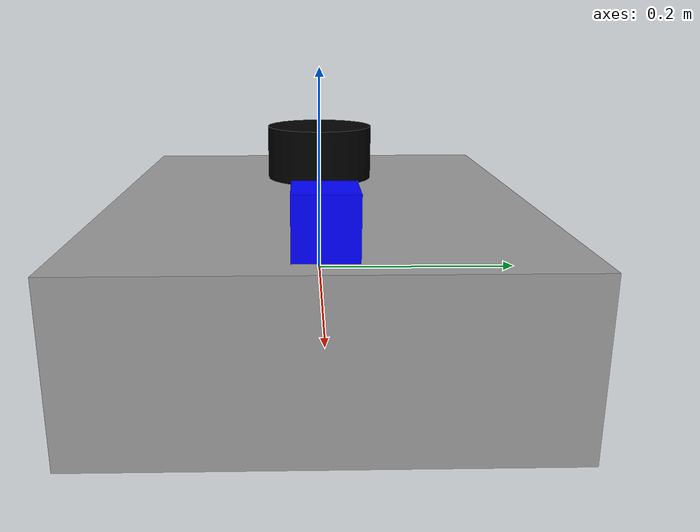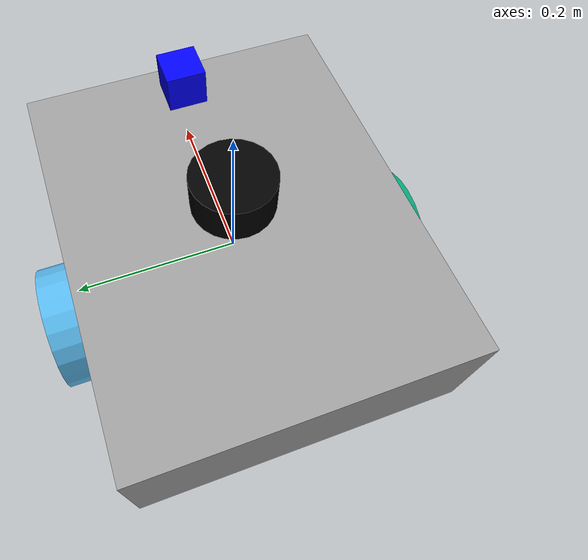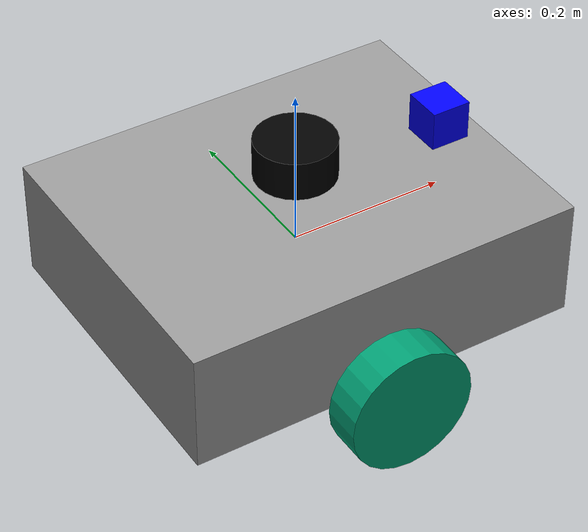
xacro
<?xml version="1.0"?>
<robot xmlns:xacro="http://www.ros.org/wiki/xacro" name="autonomous_robot" >

  <xacro:property name="wheel_radius" value="0.08" />
  <xacro:property name="wheel_length" value="0.05" />

  <!-- ================= BASE ================= -->
  <link name="base_link">
    <visual>
      <geometry>
        <box size="0.5 0.4 0.15"/>
      </geometry>
      <material name="gray">
        <color rgba="0.6 0.6 0.6 1"/>
      </material>
    </visual>

    <collision>
      <geometry>
        <box size="0.5 0.4 0.15"/>
      </geometry>
    </collision>

    <inertial>
      <mass value="10"/>
      <origin xyz="0 0 0"/>
      <inertia
          ixx="0.15"
          ixy="0"
          ixz="0"
          iyy="0.15"
          iyz="0"
          izz="0.20"/>
    </inertial>
  </link>

  <!-- ================= LEFT WHEEL ================= -->
  <link name="left_wheel">
    <visual>
      <origin xyz="0 0 -0.025" rpy="0 0 0" />
      <geometry>
        <cylinder radius="${wheel_radius}" length="${wheel_length}"/>

      </geometry>
    </visual>
  </link>

  <joint name="left_wheel_joint" type="continuous">
    <parent link="base_link"/>
    <child link="left_wheel"/>
    <origin xyz="0 0.20 -0.08" rpy="1.5708 0 0"/>
    <axis xyz="0 0 1"/>
  </joint>

  <!-- ================= RIGHT WHEEL ================= -->
  <link name="right_wheel">
    <visual>
      <origin xyz="0 0 0.025" rpy="0 0 0" />
      <geometry>
        <cylinder radius="${wheel_radius}" length="${wheel_length}"/>
      </geometry>
    </visual>
  </link>

  <joint name="right_wheel_joint" type="continuous">
    <parent link="base_link"/>
    <child link="right_wheel"/>
    <origin xyz="0 -0.20 -0.08" rpy="1.5708 0 0"/>
    <axis xyz="0 0 1"/>
  </joint>

  <!-- ================= LIDAR ================= -->
  <link name="lidar_link">
    <visual>
      <geometry>
        <cylinder radius="0.05" length="0.05"/>
      </geometry>
      <material name="black">
        <color rgba="0 0 0 1"/>
      </material>
    </visual>
  </link>

  <joint name="lidar_joint" type="fixed">
    <parent link="base_link"/>
    <child link="lidar_link"/>
    <origin xyz="0 0 0.12" rpy="0 0 0"/>
  </joint>

  <!-- ================= CAMERA ================= -->
  <link name="camera_link">
    <visual>
      <geometry>
        <box size="0.05 0.05 0.05"/>
      </geometry>
      <material name="blue">
        <color rgba="0 0 1 1"/>
      </material>
    </visual>
  </link>

  <joint name="camera_joint" type="fixed">
    <parent link="base_link"/>
    <child link="camera_link"/>
    <origin xyz="0.20 0 0.10" rpy="0 0 0"/>
  </joint>

  <!-- ================= IMU ================= -->
  <link name="imu_link"/>

  <joint name="imu_joint" type="fixed">
    <parent link="base_link"/>
    <child link="imu_link"/>
    <origin xyz="0 0 0"/>
  </joint>

</robot>
